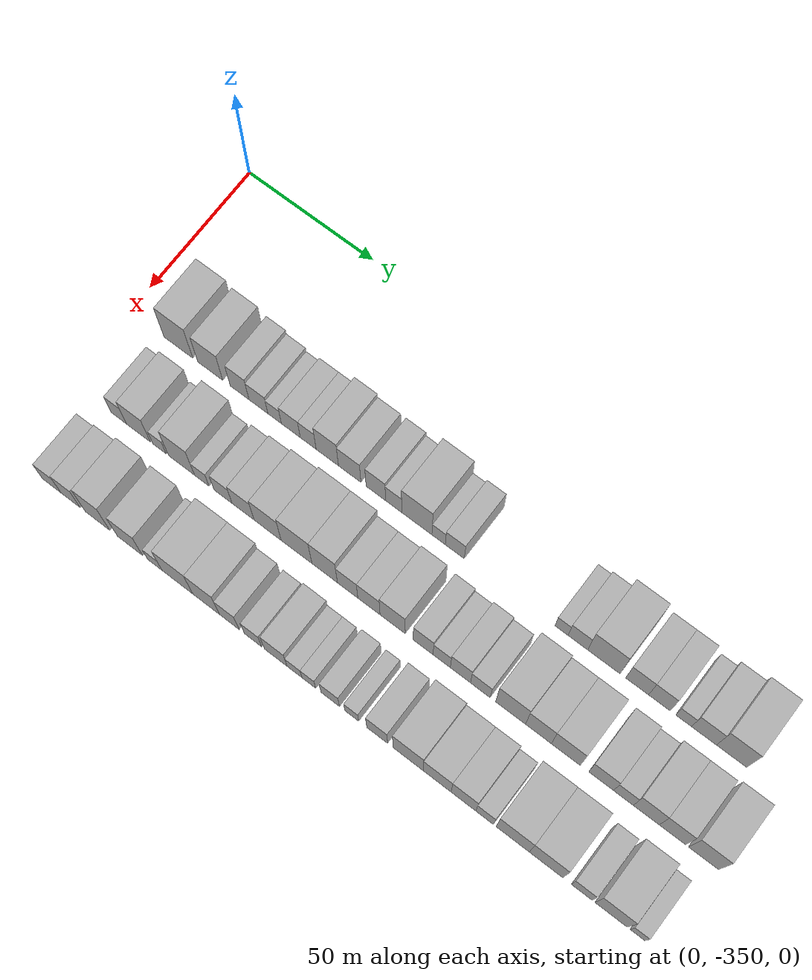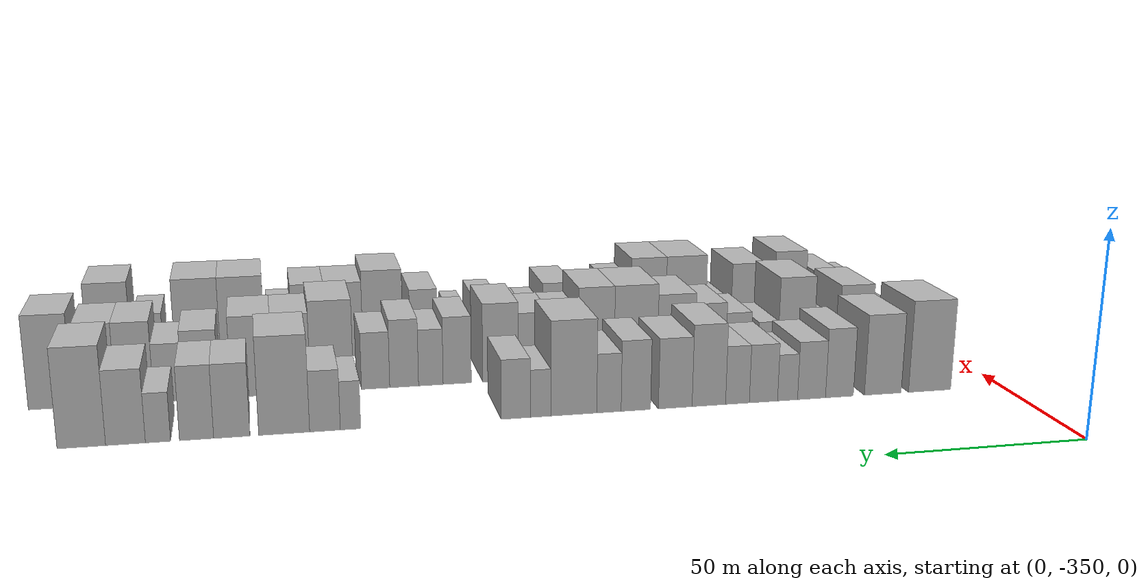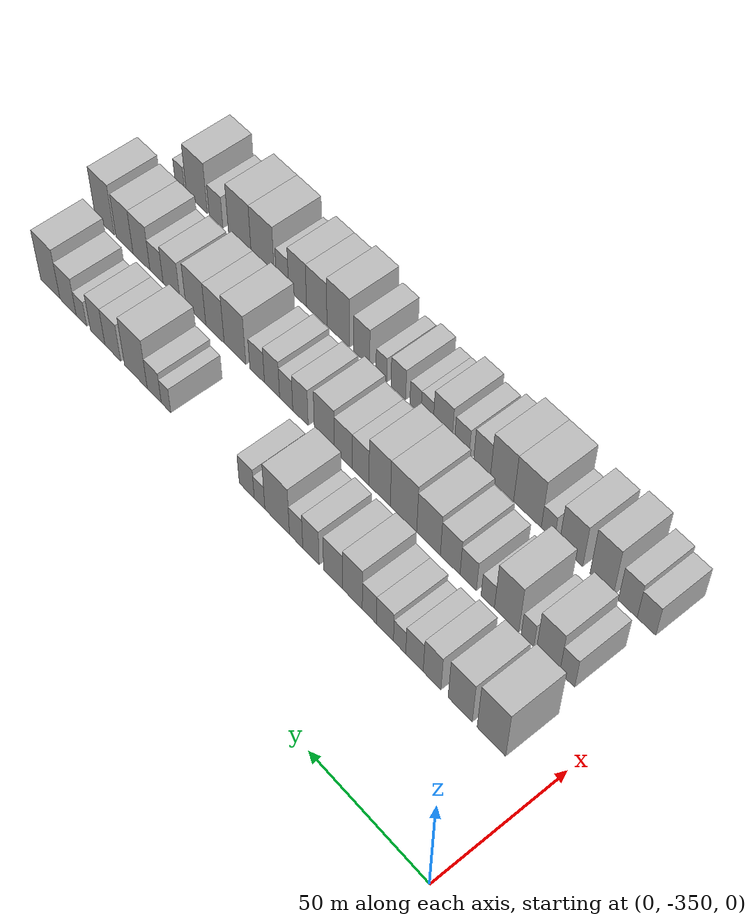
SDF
<sdf version="1.6">
 <world name="default">
  <model name="building_1">
   <static>1</static>
   <pose>50.0000 -330.2186 0 0.000000 0.000000 0.000000</pose>
   <link name="link">
    <pose>0 0 12.00 0 0 0</pose>
    <collision name="collision"><geometry><box><size>20.0000 11.5628 24.0000</size></box></geometry></collision>
    <visual name="visual">
     <cast_shadows>0</cast_shadows>
     <geometry><box><size>20.0000 11.5628 24.0000</size></box></geometry>
     <material>
      <script>
       <uri>model://HANNAS_wall/materials/scripts</uri>
       <uri>model://HANNAS_wall/materials/textures</uri>
       <name>vrc/HANNAS_wall</name>
      </script>
     </material>
    </visual>
   </link>
  </model>
  <model name="building_2">
   <static>1</static>
   <pose>50.0000 -317.4556 0 0.000000 0.000000 0.000000</pose>
   <link name="link">
    <pose>0 0 10.50 0 0 0</pose>
    <collision name="collision"><geometry><box><size>20.0000 9.9631 21.0000</size></box></geometry></collision>
    <visual name="visual">
     <cast_shadows>0</cast_shadows>
     <geometry><box><size>20.0000 9.9631 21.0000</size></box></geometry>
     <material>
      <script>
       <uri>model://HANNAS_wall/materials/scripts</uri>
       <uri>model://HANNAS_wall/materials/textures</uri>
       <name>vrc/HANNAS_wall</name>
      </script>
     </material>
    </visual>
   </link>
  </model>
  <model name="building_3">
   <static>1</static>
   <pose>50.0000 -305.7439 0 0.000000 0.000000 0.000000</pose>
   <link name="link">
    <pose>0 0 9.00 0 0 0</pose>
    <collision name="collision"><geometry><box><size>20.0000 7.4604 18.0000</size></box></geometry></collision>
    <visual name="visual">
     <cast_shadows>0</cast_shadows>
     <geometry><box><size>20.0000 7.4604 18.0000</size></box></geometry>
     <material>
      <script>
       <uri>model://HANNAS_wall/materials/scripts</uri>
       <uri>model://HANNAS_wall/materials/textures</uri>
       <name>vrc/HANNAS_wall</name>
      </script>
     </material>
    </visual>
   </link>
  </model>
  <model name="building_4">
   <static>1</static>
   <pose>50.0000 -298.2935 0 0.000000 0.000000 0.000000</pose>
   <link name="link">
    <pose>0 0 7.50 0 0 0</pose>
    <collision name="collision"><geometry><box><size>20.0000 7.4404 15.0000</size></box></geometry></collision>
    <visual name="visual">
     <cast_shadows>0</cast_shadows>
     <geometry><box><size>20.0000 7.4404 15.0000</size></box></geometry>
     <material>
      <script>
       <uri>model://HANNAS_wall/materials/scripts</uri>
       <uri>model://HANNAS_wall/materials/textures</uri>
       <name>vrc/HANNAS_wall</name>
      </script>
     </material>
    </visual>
   </link>
  </model>
  <model name="building_5">
   <static>1</static>
   <pose>50.0000 -291.9311 0 0.000000 0.000000 0.000000</pose>
   <link name="link">
    <pose>0 0 6.00 0 0 0</pose>
    <collision name="collision"><geometry><box><size>20.0000 5.2844 12.0000</size></box></geometry></collision>
    <visual name="visual">
     <cast_shadows>0</cast_shadows>
     <geometry><box><size>20.0000 5.2844 12.0000</size></box></geometry>
     <material>
      <script>
       <uri>model://HANNAS_wall/materials/scripts</uri>
       <uri>model://HANNAS_wall/materials/textures</uri>
       <name>vrc/HANNAS_wall</name>
      </script>
     </material>
    </visual>
   </link>
  </model>
  <model name="building_6">
   <static>1</static>
   <pose>50.0000 -285.5822 0 0.000000 0.000000 0.000000</pose>
   <link name="link">
    <pose>0 0 7.50 0 0 0</pose>
    <collision name="collision"><geometry><box><size>20.0000 7.4134 15.0000</size></box></geometry></collision>
    <visual name="visual">
     <cast_shadows>0</cast_shadows>
     <geometry><box><size>20.0000 7.4134 15.0000</size></box></geometry>
     <material>
      <script>
       <uri>model://HANNAS_wall/materials/scripts</uri>
       <uri>model://HANNAS_wall/materials/textures</uri>
       <name>vrc/HANNAS_wall</name>
      </script>
     </material>
    </visual>
   </link>
  </model>
  <model name="building_7">
   <static>1</static>
   <pose>50.0000 -278.7771 0 0.000000 0.000000 0.000000</pose>
   <link name="link">
    <pose>0 0 7.50 0 0 0</pose>
    <collision name="collision"><geometry><box><size>20.0000 6.1969 15.0000</size></box></geometry></collision>
    <visual name="visual">
     <cast_shadows>0</cast_shadows>
     <geometry><box><size>20.0000 6.1969 15.0000</size></box></geometry>
     <material>
      <script>
       <uri>model://HANNAS_wall/materials/scripts</uri>
       <uri>model://HANNAS_wall/materials/textures</uri>
       <name>vrc/HANNAS_wall</name>
      </script>
     </material>
    </visual>
   </link>
  </model>
  <model name="building_8">
   <static>1</static>
   <pose>50.0000 -271.3484 0 0.000000 0.000000 0.000000</pose>
   <link name="link">
    <pose>0 0 10.50 0 0 0</pose>
    <collision name="collision"><geometry><box><size>20.0000 8.6604 21.0000</size></box></geometry></collision>
    <visual name="visual">
     <cast_shadows>0</cast_shadows>
     <geometry><box><size>20.0000 8.6604 21.0000</size></box></geometry>
     <material>
      <script>
       <uri>model://HANNAS_wall/materials/scripts</uri>
       <uri>model://HANNAS_wall/materials/textures</uri>
       <name>vrc/HANNAS_wall</name>
      </script>
     </material>
    </visual>
   </link>
  </model>
  <model name="building_9">
   <static>1</static>
   <pose>50.0000 -262.6990 0 0.000000 0.000000 0.000000</pose>
   <link name="link">
    <pose>0 0 9.00 0 0 0</pose>
    <collision name="collision"><geometry><box><size>20.0000 8.6385 18.0000</size></box></geometry></collision>
    <visual name="visual">
     <cast_shadows>0</cast_shadows>
     <geometry><box><size>20.0000 8.6385 18.0000</size></box></geometry>
     <material>
      <script>
       <uri>model://HANNAS_wall/materials/scripts</uri>
       <uri>model://HANNAS_wall/materials/textures</uri>
       <name>vrc/HANNAS_wall</name>
      </script>
     </material>
    </visual>
   </link>
  </model>
  <model name="building_10">
   <static>1</static>
   <pose>50.0000 -252.6396 0 0.000000 0.000000 0.000000</pose>
   <link name="link">
    <pose>0 0 9.00 0 0 0</pose>
    <collision name="collision"><geometry><box><size>20.0000 7.4803 18.0000</size></box></geometry></collision>
    <visual name="visual">
     <cast_shadows>0</cast_shadows>
     <geometry><box><size>20.0000 7.4803 18.0000</size></box></geometry>
     <material>
      <script>
       <uri>model://HANNAS_wall/materials/scripts</uri>
       <uri>model://HANNAS_wall/materials/textures</uri>
       <name>vrc/HANNAS_wall</name>
      </script>
     </material>
    </visual>
   </link>
  </model>
  <model name="building_11">
   <static>1</static>
   <pose>50.0000 -245.8336 0 0.000000 0.000000 0.000000</pose>
   <link name="link">
    <pose>0 0 7.50 0 0 0</pose>
    <collision name="collision"><geometry><box><size>20.0000 6.1317 15.0000</size></box></geometry></collision>
    <visual name="visual">
     <cast_shadows>0</cast_shadows>
     <geometry><box><size>20.0000 6.1317 15.0000</size></box></geometry>
     <material>
      <script>
       <uri>model://HANNAS_wall/materials/scripts</uri>
       <uri>model://HANNAS_wall/materials/textures</uri>
       <name>vrc/HANNAS_wall</name>
      </script>
     </material>
    </visual>
   </link>
  </model>
  <model name="building_12">
   <static>1</static>
   <pose>50.0000 -237.0163 0 0.000000 0.000000 0.000000</pose>
   <link name="link">
    <pose>0 0 12.00 0 0 0</pose>
    <collision name="collision"><geometry><box><size>20.0000 11.5029 24.0000</size></box></geometry></collision>
    <visual name="visual">
     <cast_shadows>0</cast_shadows>
     <geometry><box><size>20.0000 11.5029 24.0000</size></box></geometry>
     <material>
      <script>
       <uri>model://HANNAS_wall/materials/scripts</uri>
       <uri>model://HANNAS_wall/materials/textures</uri>
       <name>vrc/HANNAS_wall</name>
      </script>
     </material>
    </visual>
   </link>
  </model>
  <model name="building_13">
   <static>1</static>
   <pose>50.0000 -228.7316 0 0.000000 0.000000 0.000000</pose>
   <link name="link">
    <pose>0 0 6.00 0 0 0</pose>
    <collision name="collision"><geometry><box><size>20.0000 5.0666 12.0000</size></box></geometry></collision>
    <visual name="visual">
     <cast_shadows>0</cast_shadows>
     <geometry><box><size>20.0000 5.0666 12.0000</size></box></geometry>
     <material>
      <script>
       <uri>model://HANNAS_wall/materials/scripts</uri>
       <uri>model://HANNAS_wall/materials/textures</uri>
       <name>vrc/HANNAS_wall</name>
      </script>
     </material>
    </visual>
   </link>
  </model>
  <model name="building_14">
   <static>1</static>
   <pose>50.0000 -222.6365 0 0.000000 0.000000 0.000000</pose>
   <link name="link">
    <pose>0 0 7.50 0 0 0</pose>
    <collision name="collision"><geometry><box><size>20.0000 7.1236 15.0000</size></box></geometry></collision>
    <visual name="visual">
     <cast_shadows>0</cast_shadows>
     <geometry><box><size>20.0000 7.1236 15.0000</size></box></geometry>
     <material>
      <script>
       <uri>model://HANNAS_wall/materials/scripts</uri>
       <uri>model://HANNAS_wall/materials/textures</uri>
       <name>vrc/HANNAS_wall</name>
      </script>
     </material>
    </visual>
   </link>
  </model>
  <model name="building_15">
   <static>1</static>
   <pose>50.0000 -182.8675 0 0.000000 0.000000 0.000000</pose>
   <link name="link">
    <pose>0 0 6.00 0 0 0</pose>
    <collision name="collision"><geometry><box><size>20.0000 4.8048 12.0000</size></box></geometry></collision>
    <visual name="visual">
     <cast_shadows>0</cast_shadows>
     <geometry><box><size>20.0000 4.8048 12.0000</size></box></geometry>
     <material>
      <script>
       <uri>model://HANNAS_wall/materials/scripts</uri>
       <uri>model://HANNAS_wall/materials/textures</uri>
       <name>vrc/HANNAS_wall</name>
      </script>
     </material>
    </visual>
   </link>
  </model>
  <model name="building_16">
   <static>1</static>
   <pose>50.0000 -176.8757 0 0.000000 0.000000 0.000000</pose>
   <link name="link">
    <pose>0 0 7.50 0 0 0</pose>
    <collision name="collision"><geometry><box><size>20.0000 7.1787 15.0000</size></box></geometry></collision>
    <visual name="visual">
     <cast_shadows>0</cast_shadows>
     <geometry><box><size>20.0000 7.1787 15.0000</size></box></geometry>
     <material>
      <script>
       <uri>model://HANNAS_wall/materials/scripts</uri>
       <uri>model://HANNAS_wall/materials/textures</uri>
       <name>vrc/HANNAS_wall</name>
      </script>
     </material>
    </visual>
   </link>
  </model>
  <model name="building_17">
   <static>1</static>
   <pose>50.0000 -167.3817 0 0.000000 0.000000 0.000000</pose>
   <link name="link">
    <pose>0 0 12.00 0 0 0</pose>
    <collision name="collision"><geometry><box><size>20.0000 11.8093 24.0000</size></box></geometry></collision>
    <visual name="visual">
     <cast_shadows>0</cast_shadows>
     <geometry><box><size>20.0000 11.8093 24.0000</size></box></geometry>
     <material>
      <script>
       <uri>model://HANNAS_wall/materials/scripts</uri>
       <uri>model://HANNAS_wall/materials/textures</uri>
       <name>vrc/HANNAS_wall</name>
      </script>
     </material>
    </visual>
   </link>
  </model>
  <model name="building_18">
   <static>1</static>
   <pose>50.0000 -155.3240 0 0.000000 0.000000 0.000000</pose>
   <link name="link">
    <pose>0 0 9.00 0 0 0</pose>
    <collision name="collision"><geometry><box><size>20.0000 8.3063 18.0000</size></box></geometry></collision>
    <visual name="visual">
     <cast_shadows>0</cast_shadows>
     <geometry><box><size>20.0000 8.3063 18.0000</size></box></geometry>
     <material>
      <script>
       <uri>model://HANNAS_wall/materials/scripts</uri>
       <uri>model://HANNAS_wall/materials/textures</uri>
       <name>vrc/HANNAS_wall</name>
      </script>
     </material>
    </visual>
   </link>
  </model>
  <model name="building_19">
   <static>1</static>
   <pose>50.0000 -147.2975 0 0.000000 0.000000 0.000000</pose>
   <link name="link">
    <pose>0 0 9.00 0 0 0</pose>
    <collision name="collision"><geometry><box><size>20.0000 7.7467 18.0000</size></box></geometry></collision>
    <visual name="visual">
     <cast_shadows>0</cast_shadows>
     <geometry><box><size>20.0000 7.7467 18.0000</size></box></geometry>
     <material>
      <script>
       <uri>model://HANNAS_wall/materials/scripts</uri>
       <uri>model://HANNAS_wall/materials/textures</uri>
       <name>vrc/HANNAS_wall</name>
      </script>
     </material>
    </visual>
   </link>
  </model>
  <model name="building_20">
   <static>1</static>
   <pose>50.0000 -138.5946 0 0.000000 0.000000 0.000000</pose>
   <link name="link">
    <pose>0 0 6.00 0 0 0</pose>
    <collision name="collision"><geometry><box><size>20.0000 5.6591 12.0000</size></box></geometry></collision>
    <visual name="visual">
     <cast_shadows>0</cast_shadows>
     <geometry><box><size>20.0000 5.6591 12.0000</size></box></geometry>
     <material>
      <script>
       <uri>model://HANNAS_wall/materials/scripts</uri>
       <uri>model://HANNAS_wall/materials/textures</uri>
       <name>vrc/HANNAS_wall</name>
      </script>
     </material>
    </visual>
   </link>
  </model>
  <model name="building_21">
   <static>1</static>
   <pose>50.0000 -131.3312 0 0.000000 0.000000 0.000000</pose>
   <link name="link">
    <pose>0 0 9.00 0 0 0</pose>
    <collision name="collision"><geometry><box><size>20.0000 8.8676 18.0000</size></box></geometry></collision>
    <visual name="visual">
     <cast_shadows>0</cast_shadows>
     <geometry><box><size>20.0000 8.8676 18.0000</size></box></geometry>
     <material>
      <script>
       <uri>model://HANNAS_wall/materials/scripts</uri>
       <uri>model://HANNAS_wall/materials/textures</uri>
       <name>vrc/HANNAS_wall</name>
      </script>
     </material>
    </visual>
   </link>
  </model>
  <model name="building_22">
   <static>1</static>
   <pose>50.0000 -121.5439 0 0.000000 0.000000 0.000000</pose>
   <link name="link">
    <pose>0 0 12.00 0 0 0</pose>
    <collision name="collision"><geometry><box><size>20.0000 10.7071 24.0000</size></box></geometry></collision>
    <visual name="visual">
     <cast_shadows>0</cast_shadows>
     <geometry><box><size>20.0000 10.7071 24.0000</size></box></geometry>
     <material>
      <script>
       <uri>model://HANNAS_wall/materials/scripts</uri>
       <uri>model://HANNAS_wall/materials/textures</uri>
       <name>vrc/HANNAS_wall</name>
      </script>
     </material>
    </visual>
   </link>
  </model>
  <model name="building_71">
   <static>1</static>
   <pose>79.0000 -329.9695 0 0.000000 0.000000 0.000000</pose>
   <link name="link">
    <pose>0 0 7.50 0 0 0</pose>
    <collision name="collision"><geometry><box><size>20.0000 6.0610 15.0000</size></box></geometry></collision>
    <visual name="visual">
     <cast_shadows>0</cast_shadows>
     <geometry><box><size>20.0000 6.0610 15.0000</size></box></geometry>
     <material>
      <script>
       <uri>model://HANNAS_wall/materials/scripts</uri>
       <uri>model://HANNAS_wall/materials/textures</uri>
       <name>vrc/HANNAS_wall</name>
      </script>
     </material>
    </visual>
   </link>
  </model>
  <model name="building_72">
   <static>1</static>
   <pose>79.0000 -322.1754 0 0.000000 0.000000 0.000000</pose>
   <link name="link">
    <pose>0 0 10.50 0 0 0</pose>
    <collision name="collision"><geometry><box><size>20.0000 9.5271 21.0000</size></box></geometry></collision>
    <visual name="visual">
     <cast_shadows>0</cast_shadows>
     <geometry><box><size>20.0000 9.5271 21.0000</size></box></geometry>
     <material>
      <script>
       <uri>model://HANNAS_wall/materials/scripts</uri>
       <uri>model://HANNAS_wall/materials/textures</uri>
       <name>vrc/HANNAS_wall</name>
      </script>
     </material>
    </visual>
   </link>
  </model>
  <model name="building_73">
   <static>1</static>
   <pose>79.0000 -313.7748 0 0.000000 0.000000 0.000000</pose>
   <link name="link">
    <pose>0 0 6.00 0 0 0</pose>
    <collision name="collision"><geometry><box><size>20.0000 5.2740 12.0000</size></box></geometry></collision>
    <visual name="visual">
     <cast_shadows>0</cast_shadows>
     <geometry><box><size>20.0000 5.2740 12.0000</size></box></geometry>
     <material>
      <script>
       <uri>model://HANNAS_wall/materials/scripts</uri>
       <uri>model://HANNAS_wall/materials/textures</uri>
       <name>vrc/HANNAS_wall</name>
      </script>
     </material>
    </visual>
   </link>
  </model>
  <model name="building_74">
   <static>1</static>
   <pose>79.0000 -305.0358 0 0.000000 0.000000 0.000000</pose>
   <link name="link">
    <pose>0 0 12.00 0 0 0</pose>
    <collision name="collision"><geometry><box><size>20.0000 10.2040 24.0000</size></box></geometry></collision>
    <visual name="visual">
     <cast_shadows>0</cast_shadows>
     <geometry><box><size>20.0000 10.2040 24.0000</size></box></geometry>
     <material>
      <script>
       <uri>model://HANNAS_wall/materials/scripts</uri>
       <uri>model://HANNAS_wall/materials/textures</uri>
       <name>vrc/HANNAS_wall</name>
      </script>
     </material>
    </visual>
   </link>
  </model>
  <model name="building_75">
   <static>1</static>
   <pose>79.0000 -297.1159 0 0.000000 0.000000 0.000000</pose>
   <link name="link">
    <pose>0 0 6.00 0 0 0</pose>
    <collision name="collision"><geometry><box><size>20.0000 5.6359 12.0000</size></box></geometry></collision>
    <visual name="visual">
     <cast_shadows>0</cast_shadows>
     <geometry><box><size>20.0000 5.6359 12.0000</size></box></geometry>
     <material>
      <script>
       <uri>model://HANNAS_wall/materials/scripts</uri>
       <uri>model://HANNAS_wall/materials/textures</uri>
       <name>vrc/HANNAS_wall</name>
      </script>
     </material>
    </visual>
   </link>
  </model>
  <model name="building_76">
   <static>1</static>
   <pose>79.0000 -288.7767 0 0.000000 0.000000 0.000000</pose>
   <link name="link">
    <pose>0 0 7.50 0 0 0</pose>
    <collision name="collision"><geometry><box><size>20.0000 7.0424 15.0000</size></box></geometry></collision>
    <visual name="visual">
     <cast_shadows>0</cast_shadows>
     <geometry><box><size>20.0000 7.0424 15.0000</size></box></geometry>
     <material>
      <script>
       <uri>model://HANNAS_wall/materials/scripts</uri>
       <uri>model://HANNAS_wall/materials/textures</uri>
       <name>vrc/HANNAS_wall</name>
      </script>
     </material>
    </visual>
   </link>
  </model>
  <model name="building_77">
   <static>1</static>
   <pose>79.0000 -280.9839 0 0.000000 0.000000 0.000000</pose>
   <link name="link">
    <pose>0 0 9.00 0 0 0</pose>
    <collision name="collision"><geometry><box><size>20.0000 8.5432 18.0000</size></box></geometry></collision>
    <visual name="visual">
     <cast_shadows>0</cast_shadows>
     <geometry><box><size>20.0000 8.5432 18.0000</size></box></geometry>
     <material>
      <script>
       <uri>model://HANNAS_wall/materials/scripts</uri>
       <uri>model://HANNAS_wall/materials/textures</uri>
       <name>vrc/HANNAS_wall</name>
      </script>
     </material>
    </visual>
   </link>
  </model>
  <model name="building_78">
   <static>1</static>
   <pose>79.0000 -271.4863 0 0.000000 0.000000 0.000000</pose>
   <link name="link">
    <pose>0 0 10.50 0 0 0</pose>
    <collision name="collision"><geometry><box><size>20.0000 10.4520 21.0000</size></box></geometry></collision>
    <visual name="visual">
     <cast_shadows>0</cast_shadows>
     <geometry><box><size>20.0000 10.4520 21.0000</size></box></geometry>
     <material>
      <script>
       <uri>model://HANNAS_wall/materials/scripts</uri>
       <uri>model://HANNAS_wall/materials/textures</uri>
       <name>vrc/HANNAS_wall</name>
      </script>
     </material>
    </visual>
   </link>
  </model>
  <model name="building_79">
   <static>1</static>
   <pose>79.0000 -260.3414 0 0.000000 0.000000 0.000000</pose>
   <link name="link">
    <pose>0 0 12.00 0 0 0</pose>
    <collision name="collision"><geometry><box><size>20.0000 11.8379 24.0000</size></box></geometry></collision>
    <visual name="visual">
     <cast_shadows>0</cast_shadows>
     <geometry><box><size>20.0000 11.8379 24.0000</size></box></geometry>
     <material>
      <script>
       <uri>model://HANNAS_wall/materials/scripts</uri>
       <uri>model://HANNAS_wall/materials/textures</uri>
       <name>vrc/HANNAS_wall</name>
      </script>
     </material>
    </visual>
   </link>
  </model>
  <model name="building_80">
   <static>1</static>
   <pose>79.0000 -249.5621 0 0.000000 0.000000 0.000000</pose>
   <link name="link">
    <pose>0 0 12.00 0 0 0</pose>
    <collision name="collision"><geometry><box><size>20.0000 9.7208 24.0000</size></box></geometry></collision>
    <visual name="visual">
     <cast_shadows>0</cast_shadows>
     <geometry><box><size>20.0000 9.7208 24.0000</size></box></geometry>
     <material>
      <script>
       <uri>model://HANNAS_wall/materials/scripts</uri>
       <uri>model://HANNAS_wall/materials/textures</uri>
       <name>vrc/HANNAS_wall</name>
      </script>
     </material>
    </visual>
   </link>
  </model>
  <model name="building_81">
   <static>1</static>
   <pose>79.0000 -240.8583 0 0.000000 0.000000 0.000000</pose>
   <link name="link">
    <pose>0 0 9.00 0 0 0</pose>
    <collision name="collision"><geometry><box><size>20.0000 7.6867 18.0000</size></box></geometry></collision>
    <visual name="visual">
     <cast_shadows>0</cast_shadows>
     <geometry><box><size>20.0000 7.6867 18.0000</size></box></geometry>
     <material>
      <script>
       <uri>model://HANNAS_wall/materials/scripts</uri>
       <uri>model://HANNAS_wall/materials/textures</uri>
       <name>vrc/HANNAS_wall</name>
      </script>
     </material>
    </visual>
   </link>
  </model>
  <model name="building_82">
   <static>1</static>
   <pose>79.0000 -232.8319 0 0.000000 0.000000 0.000000</pose>
   <link name="link">
    <pose>0 0 9.00 0 0 0</pose>
    <collision name="collision"><geometry><box><size>20.0000 8.3662 18.0000</size></box></geometry></collision>
    <visual name="visual">
     <cast_shadows>0</cast_shadows>
     <geometry><box><size>20.0000 8.3662 18.0000</size></box></geometry>
     <material>
      <script>
       <uri>model://HANNAS_wall/materials/scripts</uri>
       <uri>model://HANNAS_wall/materials/textures</uri>
       <name>vrc/HANNAS_wall</name>
      </script>
     </material>
    </visual>
   </link>
  </model>
  <model name="building_83">
   <static>1</static>
   <pose>79.0000 -223.9256 0 0.000000 0.000000 0.000000</pose>
   <link name="link">
    <pose>0 0 10.50 0 0 0</pose>
    <collision name="collision"><geometry><box><size>20.0000 9.4464 21.0000</size></box></geometry></collision>
    <visual name="visual">
     <cast_shadows>0</cast_shadows>
     <geometry><box><size>20.0000 9.4464 21.0000</size></box></geometry>
     <material>
      <script>
       <uri>model://HANNAS_wall/materials/scripts</uri>
       <uri>model://HANNAS_wall/materials/textures</uri>
       <name>vrc/HANNAS_wall</name>
      </script>
     </material>
    </visual>
   </link>
  </model>
  <model name="building_84">
   <static>1</static>
   <pose>79.0000 -212.5070 0 0.000000 0.000000 0.000000</pose>
   <link name="link">
    <pose>0 0 9.00 0 0 0</pose>
    <collision name="collision"><geometry><box><size>20.0000 7.3908 18.0000</size></box></geometry></collision>
    <visual name="visual">
     <cast_shadows>0</cast_shadows>
     <geometry><box><size>20.0000 7.3908 18.0000</size></box></geometry>
     <material>
      <script>
       <uri>model://HANNAS_wall/materials/scripts</uri>
       <uri>model://HANNAS_wall/materials/textures</uri>
       <name>vrc/HANNAS_wall</name>
      </script>
     </material>
    </visual>
   </link>
  </model>
  <model name="building_85">
   <static>1</static>
   <pose>79.0000 -205.6117 0 0.000000 0.000000 0.000000</pose>
   <link name="link">
    <pose>0 0 7.50 0 0 0</pose>
    <collision name="collision"><geometry><box><size>20.0000 6.3998 15.0000</size></box></geometry></collision>
    <visual name="visual">
     <cast_shadows>0</cast_shadows>
     <geometry><box><size>20.0000 6.3998 15.0000</size></box></geometry>
     <material>
      <script>
       <uri>model://HANNAS_wall/materials/scripts</uri>
       <uri>model://HANNAS_wall/materials/textures</uri>
       <name>vrc/HANNAS_wall</name>
      </script>
     </material>
    </visual>
   </link>
  </model>
  <model name="building_86">
   <static>1</static>
   <pose>79.0000 -198.6911 0 0.000000 0.000000 0.000000</pose>
   <link name="link">
    <pose>0 0 9.00 0 0 0</pose>
    <collision name="collision"><geometry><box><size>20.0000 7.4414 18.0000</size></box></geometry></collision>
    <visual name="visual">
     <cast_shadows>0</cast_shadows>
     <geometry><box><size>20.0000 7.4414 18.0000</size></box></geometry>
     <material>
      <script>
       <uri>model://HANNAS_wall/materials/scripts</uri>
       <uri>model://HANNAS_wall/materials/textures</uri>
       <name>vrc/HANNAS_wall</name>
      </script>
     </material>
    </visual>
   </link>
  </model>
  <model name="building_87">
   <static>1</static>
   <pose>79.0000 -191.3484 0 0.000000 0.000000 0.000000</pose>
   <link name="link">
    <pose>0 0 7.50 0 0 0</pose>
    <collision name="collision"><geometry><box><size>20.0000 7.2439 15.0000</size></box></geometry></collision>
    <visual name="visual">
     <cast_shadows>0</cast_shadows>
     <geometry><box><size>20.0000 7.2439 15.0000</size></box></geometry>
     <material>
      <script>
       <uri>model://HANNAS_wall/materials/scripts</uri>
       <uri>model://HANNAS_wall/materials/textures</uri>
       <name>vrc/HANNAS_wall</name>
      </script>
     </material>
    </visual>
   </link>
  </model>
  <model name="building_88">
   <static>1</static>
   <pose>79.0000 -180.2639 0 0.000000 0.000000 0.000000</pose>
   <link name="link">
    <pose>0 0 12.00 0 0 0</pose>
    <collision name="collision"><geometry><box><size>20.0000 10.9250 24.0000</size></box></geometry></collision>
    <visual name="visual">
     <cast_shadows>0</cast_shadows>
     <geometry><box><size>20.0000 10.9250 24.0000</size></box></geometry>
     <material>
      <script>
       <uri>model://HANNAS_wall/materials/scripts</uri>
       <uri>model://HANNAS_wall/materials/textures</uri>
       <name>vrc/HANNAS_wall</name>
      </script>
     </material>
    </visual>
   </link>
  </model>
  <model name="building_89">
   <static>1</static>
   <pose>79.0000 -170.1079 0 0.000000 0.000000 0.000000</pose>
   <link name="link">
    <pose>0 0 10.50 0 0 0</pose>
    <collision name="collision"><geometry><box><size>20.0000 9.3870 21.0000</size></box></geometry></collision>
    <visual name="visual">
     <cast_shadows>0</cast_shadows>
     <geometry><box><size>20.0000 9.3870 21.0000</size></box></geometry>
     <material>
      <script>
       <uri>model://HANNAS_wall/materials/scripts</uri>
       <uri>model://HANNAS_wall/materials/textures</uri>
       <name>vrc/HANNAS_wall</name>
      </script>
     </material>
    </visual>
   </link>
  </model>
  <model name="building_90">
   <static>1</static>
   <pose>79.0000 -160.1839 0 0.000000 0.000000 0.000000</pose>
   <link name="link">
    <pose>0 0 10.50 0 0 0</pose>
    <collision name="collision"><geometry><box><size>20.0000 10.4610 21.0000</size></box></geometry></collision>
    <visual name="visual">
     <cast_shadows>0</cast_shadows>
     <geometry><box><size>20.0000 10.4610 21.0000</size></box></geometry>
     <material>
      <script>
       <uri>model://HANNAS_wall/materials/scripts</uri>
       <uri>model://HANNAS_wall/materials/textures</uri>
       <name>vrc/HANNAS_wall</name>
      </script>
     </material>
    </visual>
   </link>
  </model>
  <model name="building_91">
   <static>1</static>
   <pose>79.0000 -147.4932 0 0.000000 0.000000 0.000000</pose>
   <link name="link">
    <pose>0 0 9.00 0 0 0</pose>
    <collision name="collision"><geometry><box><size>20.0000 8.9204 18.0000</size></box></geometry></collision>
    <visual name="visual">
     <cast_shadows>0</cast_shadows>
     <geometry><box><size>20.0000 8.9204 18.0000</size></box></geometry>
     <material>
      <script>
       <uri>model://HANNAS_wall/materials/scripts</uri>
       <uri>model://HANNAS_wall/materials/textures</uri>
       <name>vrc/HANNAS_wall</name>
      </script>
     </material>
    </visual>
   </link>
  </model>
  <model name="building_92">
   <static>1</static>
   <pose>79.0000 -139.5305 0 0.000000 0.000000 0.000000</pose>
   <link name="link">
    <pose>0 0 7.50 0 0 0</pose>
    <collision name="collision"><geometry><box><size>20.0000 7.0050 15.0000</size></box></geometry></collision>
    <visual name="visual">
     <cast_shadows>0</cast_shadows>
     <geometry><box><size>20.0000 7.0050 15.0000</size></box></geometry>
     <material>
      <script>
       <uri>model://HANNAS_wall/materials/scripts</uri>
       <uri>model://HANNAS_wall/materials/textures</uri>
       <name>vrc/HANNAS_wall</name>
      </script>
     </material>
    </visual>
   </link>
  </model>
  <model name="building_93">
   <static>1</static>
   <pose>79.0000 -131.4531 0 0.000000 0.000000 0.000000</pose>
   <link name="link">
    <pose>0 0 10.50 0 0 0</pose>
    <collision name="collision"><geometry><box><size>20.0000 9.1498 21.0000</size></box></geometry></collision>
    <visual name="visual">
     <cast_shadows>0</cast_shadows>
     <geometry><box><size>20.0000 9.1498 21.0000</size></box></geometry>
     <material>
      <script>
       <uri>model://HANNAS_wall/materials/scripts</uri>
       <uri>model://HANNAS_wall/materials/textures</uri>
       <name>vrc/HANNAS_wall</name>
      </script>
     </material>
    </visual>
   </link>
  </model>
  <model name="building_94">
   <static>1</static>
   <pose>79.0000 -122.2229 0 0.000000 0.000000 0.000000</pose>
   <link name="link">
    <pose>0 0 10.50 0 0 0</pose>
    <collision name="collision"><geometry><box><size>20.0000 9.3106 21.0000</size></box></geometry></collision>
    <visual name="visual">
     <cast_shadows>0</cast_shadows>
     <geometry><box><size>20.0000 9.3106 21.0000</size></box></geometry>
     <material>
      <script>
       <uri>model://HANNAS_wall/materials/scripts</uri>
       <uri>model://HANNAS_wall/materials/textures</uri>
       <name>vrc/HANNAS_wall</name>
      </script>
     </material>
    </visual>
   </link>
  </model>
  <model name="building_95">
   <static>1</static>
   <pose>79.0000 -111.3020 0 0.000000 0.000000 0.000000</pose>
   <link name="link">
    <pose>0 0 12.00 0 0 0</pose>
    <collision name="collision"><geometry><box><size>20.0000 10.5313 24.0000</size></box></geometry></collision>
    <visual name="visual">
     <cast_shadows>0</cast_shadows>
     <geometry><box><size>20.0000 10.5313 24.0000</size></box></geometry>
     <material>
      <script>
       <uri>model://HANNAS_wall/materials/scripts</uri>
       <uri>model://HANNAS_wall/materials/textures</uri>
       <name>vrc/HANNAS_wall</name>
      </script>
     </material>
    </visual>
   </link>
  </model>
  <model name="building_140">
   <static>1</static>
   <pose>108.0000 -332.2698 0 0.000000 0.000000 0.000000</pose>
   <link name="link">
    <pose>0 0 7.50 0 0 0</pose>
    <collision name="collision"><geometry><box><size>20.0000 7.4604 15.0000</size></box></geometry></collision>
    <visual name="visual">
     <cast_shadows>0</cast_shadows>
     <geometry><box><size>20.0000 7.4604 15.0000</size></box></geometry>
     <material>
      <script>
       <uri>model://HANNAS_wall/materials/scripts</uri>
       <uri>model://HANNAS_wall/materials/textures</uri>
       <name>vrc/HANNAS_wall</name>
      </script>
     </material>
    </visual>
   </link>
  </model>
  <model name="building_141">
   <static>1</static>
   <pose>108.0000 -324.7196 0 0.000000 0.000000 0.000000</pose>
   <link name="link">
    <pose>0 0 9.00 0 0 0</pose>
    <collision name="collision"><geometry><box><size>20.0000 7.6400 18.0000</size></box></geometry></collision>
    <visual name="visual">
     <cast_shadows>0</cast_shadows>
     <geometry><box><size>20.0000 7.6400 18.0000</size></box></geometry>
     <material>
      <script>
       <uri>model://HANNAS_wall/materials/scripts</uri>
       <uri>model://HANNAS_wall/materials/textures</uri>
       <name>vrc/HANNAS_wall</name>
      </script>
     </material>
    </visual>
   </link>
  </model>
  <model name="building_142">
   <static>1</static>
   <pose>108.0000 -314.0918 0 0.000000 0.000000 0.000000</pose>
   <link name="link">
    <pose>0 0 12.00 0 0 0</pose>
    <collision name="collision"><geometry><box><size>20.0000 9.6156 24.0000</size></box></geometry></collision>
    <visual name="visual">
     <cast_shadows>0</cast_shadows>
     <geometry><box><size>20.0000 9.6156 24.0000</size></box></geometry>
     <material>
      <script>
       <uri>model://HANNAS_wall/materials/scripts</uri>
       <uri>model://HANNAS_wall/materials/textures</uri>
       <name>vrc/HANNAS_wall</name>
      </script>
     </material>
    </visual>
   </link>
  </model>
  <model name="building_143">
   <static>1</static>
   <pose>108.0000 -301.3443 0 0.000000 0.000000 0.000000</pose>
   <link name="link">
    <pose>0 0 10.50 0 0 0</pose>
    <collision name="collision"><geometry><box><size>20.0000 9.8793 21.0000</size></box></geometry></collision>
    <visual name="visual">
     <cast_shadows>0</cast_shadows>
     <geometry><box><size>20.0000 9.8793 21.0000</size></box></geometry>
     <material>
      <script>
       <uri>model://HANNAS_wall/materials/scripts</uri>
       <uri>model://HANNAS_wall/materials/textures</uri>
       <name>vrc/HANNAS_wall</name>
      </script>
     </material>
    </visual>
   </link>
  </model>
  <model name="building_144">
   <static>1</static>
   <pose>108.0000 -291.5964 0 0.000000 0.000000 0.000000</pose>
   <link name="link">
    <pose>0 0 6.00 0 0 0</pose>
    <collision name="collision"><geometry><box><size>20.0000 5.6166 12.0000</size></box></geometry></collision>
    <visual name="visual">
     <cast_shadows>0</cast_shadows>
     <geometry><box><size>20.0000 5.6166 12.0000</size></box></geometry>
     <material>
      <script>
       <uri>model://HANNAS_wall/materials/scripts</uri>
       <uri>model://HANNAS_wall/materials/textures</uri>
       <name>vrc/HANNAS_wall</name>
      </script>
     </material>
    </visual>
   </link>
  </model>
  <model name="building_145">
   <static>1</static>
   <pose>108.0000 -282.8244 0 0.000000 0.000000 0.000000</pose>
   <link name="link">
    <pose>0 0 12.00 0 0 0</pose>
    <collision name="collision"><geometry><box><size>20.0000 11.9274 24.0000</size></box></geometry></collision>
    <visual name="visual">
     <cast_shadows>0</cast_shadows>
     <geometry><box><size>20.0000 11.9274 24.0000</size></box></geometry>
     <material>
      <script>
       <uri>model://HANNAS_wall/materials/scripts</uri>
       <uri>model://HANNAS_wall/materials/textures</uri>
       <name>vrc/HANNAS_wall</name>
      </script>
     </material>
    </visual>
   </link>
  </model>
  <model name="building_146">
   <static>1</static>
   <pose>108.0000 -271.7116 0 0.000000 0.000000 0.000000</pose>
   <link name="link">
    <pose>0 0 12.00 0 0 0</pose>
    <collision name="collision"><geometry><box><size>20.0000 10.2982 24.0000</size></box></geometry></collision>
    <visual name="visual">
     <cast_shadows>0</cast_shadows>
     <geometry><box><size>20.0000 10.2982 24.0000</size></box></geometry>
     <material>
      <script>
       <uri>model://HANNAS_wall/materials/scripts</uri>
       <uri>model://HANNAS_wall/materials/textures</uri>
       <name>vrc/HANNAS_wall</name>
      </script>
     </material>
    </visual>
   </link>
  </model>
  <model name="building_147">
   <static>1</static>
   <pose>108.0000 -262.8327 0 0.000000 0.000000 0.000000</pose>
   <link name="link">
    <pose>0 0 9.00 0 0 0</pose>
    <collision name="collision"><geometry><box><size>20.0000 7.4596 18.0000</size></box></geometry></collision>
    <visual name="visual">
     <cast_shadows>0</cast_shadows>
     <geometry><box><size>20.0000 7.4596 18.0000</size></box></geometry>
     <material>
      <script>
       <uri>model://HANNAS_wall/materials/scripts</uri>
       <uri>model://HANNAS_wall/materials/textures</uri>
       <name>vrc/HANNAS_wall</name>
      </script>
     </material>
    </visual>
   </link>
  </model>
  <model name="building_148">
   <static>1</static>
   <pose>108.0000 -253.7924 0 0.000000 0.000000 0.000000</pose>
   <link name="link">
    <pose>0 0 7.50 0 0 0</pose>
    <collision name="collision"><geometry><box><size>20.0000 6.6209 15.0000</size></box></geometry></collision>
    <visual name="visual">
     <cast_shadows>0</cast_shadows>
     <geometry><box><size>20.0000 6.6209 15.0000</size></box></geometry>
     <material>
      <script>
       <uri>model://HANNAS_wall/materials/scripts</uri>
       <uri>model://HANNAS_wall/materials/textures</uri>
       <name>vrc/HANNAS_wall</name>
      </script>
     </material>
    </visual>
   </link>
  </model>
  <model name="building_149">
   <static>1</static>
   <pose>108.0000 -245.1979 0 0.000000 0.000000 0.000000</pose>
   <link name="link">
    <pose>0 0 9.00 0 0 0</pose>
    <collision name="collision"><geometry><box><size>20.0000 8.5680 18.0000</size></box></geometry></collision>
    <visual name="visual">
     <cast_shadows>0</cast_shadows>
     <geometry><box><size>20.0000 8.5680 18.0000</size></box></geometry>
     <material>
      <script>
       <uri>model://HANNAS_wall/materials/scripts</uri>
       <uri>model://HANNAS_wall/materials/textures</uri>
       <name>vrc/HANNAS_wall</name>
      </script>
     </material>
    </visual>
   </link>
  </model>
  <model name="building_150">
   <static>1</static>
   <pose>108.0000 -238.0958 0 0.000000 0.000000 0.000000</pose>
   <link name="link">
    <pose>0 0 6.00 0 0 0</pose>
    <collision name="collision"><geometry><box><size>20.0000 5.6362 12.0000</size></box></geometry></collision>
    <visual name="visual">
     <cast_shadows>0</cast_shadows>
     <geometry><box><size>20.0000 5.6362 12.0000</size></box></geometry>
     <material>
      <script>
       <uri>model://HANNAS_wall/materials/scripts</uri>
       <uri>model://HANNAS_wall/materials/textures</uri>
       <name>vrc/HANNAS_wall</name>
      </script>
     </material>
    </visual>
   </link>
  </model>
  <model name="building_151">
   <static>1</static>
   <pose>108.0000 -232.7119 0 0.000000 0.000000 0.000000</pose>
   <link name="link">
    <pose>0 0 6.00 0 0 0</pose>
    <collision name="collision"><geometry><box><size>20.0000 5.1315 12.0000</size></box></geometry></collision>
    <visual name="visual">
     <cast_shadows>0</cast_shadows>
     <geometry><box><size>20.0000 5.1315 12.0000</size></box></geometry>
     <material>
      <script>
       <uri>model://HANNAS_wall/materials/scripts</uri>
       <uri>model://HANNAS_wall/materials/textures</uri>
       <name>vrc/HANNAS_wall</name>
      </script>
     </material>
    </visual>
   </link>
  </model>
  <model name="building_152">
   <static>1</static>
   <pose>108.0000 -224.7063 0 0.000000 0.000000 0.000000</pose>
   <link name="link">
    <pose>0 0 7.50 0 0 0</pose>
    <collision name="collision"><geometry><box><size>20.0000 6.8797 15.0000</size></box></geometry></collision>
    <visual name="visual">
     <cast_shadows>0</cast_shadows>
     <geometry><box><size>20.0000 6.8797 15.0000</size></box></geometry>
     <material>
      <script>
       <uri>model://HANNAS_wall/materials/scripts</uri>
       <uri>model://HANNAS_wall/materials/textures</uri>
       <name>vrc/HANNAS_wall</name>
      </script>
     </material>
    </visual>
   </link>
  </model>
  <model name="building_153">
   <static>1</static>
   <pose>108.0000 -216.7093 0 0.000000 0.000000 0.000000</pose>
   <link name="link">
    <pose>0 0 6.00 0 0 0</pose>
    <collision name="collision"><geometry><box><size>20.0000 5.1143 12.0000</size></box></geometry></collision>
    <visual name="visual">
     <cast_shadows>0</cast_shadows>
     <geometry><box><size>20.0000 5.1143 12.0000</size></box></geometry>
     <material>
      <script>
       <uri>model://HANNAS_wall/materials/scripts</uri>
       <uri>model://HANNAS_wall/materials/textures</uri>
       <name>vrc/HANNAS_wall</name>
      </script>
     </material>
    </visual>
   </link>
  </model>
  <model name="building_154">
   <static>1</static>
   <pose>108.0000 -207.3169 0 0.000000 0.000000 0.000000</pose>
   <link name="link">
    <pose>0 0 9.00 0 0 0</pose>
    <collision name="collision"><geometry><box><size>20.0000 7.6705 18.0000</size></box></geometry></collision>
    <visual name="visual">
     <cast_shadows>0</cast_shadows>
     <geometry><box><size>20.0000 7.6705 18.0000</size></box></geometry>
     <material>
      <script>
       <uri>model://HANNAS_wall/materials/scripts</uri>
       <uri>model://HANNAS_wall/materials/textures</uri>
       <name>vrc/HANNAS_wall</name>
      </script>
     </material>
    </visual>
   </link>
  </model>
  <model name="building_155">
   <static>1</static>
   <pose>108.0000 -195.9602 0 0.000000 0.000000 0.000000</pose>
   <link name="link">
    <pose>0 0 12.00 0 0 0</pose>
    <collision name="collision"><geometry><box><size>20.0000 11.0428 24.0000</size></box></geometry></collision>
    <visual name="visual">
     <cast_shadows>0</cast_shadows>
     <geometry><box><size>20.0000 11.0428 24.0000</size></box></geometry>
     <material>
      <script>
       <uri>model://HANNAS_wall/materials/scripts</uri>
       <uri>model://HANNAS_wall/materials/textures</uri>
       <name>vrc/HANNAS_wall</name>
      </script>
     </material>
    </visual>
   </link>
  </model>
  <model name="building_156">
   <static>1</static>
   <pose>108.0000 -185.3490 0 0.000000 0.000000 0.000000</pose>
   <link name="link">
    <pose>0 0 10.50 0 0 0</pose>
    <collision name="collision"><geometry><box><size>20.0000 10.1796 21.0000</size></box></geometry></collision>
    <visual name="visual">
     <cast_shadows>0</cast_shadows>
     <geometry><box><size>20.0000 10.1796 21.0000</size></box></geometry>
     <material>
      <script>
       <uri>model://HANNAS_wall/materials/scripts</uri>
       <uri>model://HANNAS_wall/materials/textures</uri>
       <name>vrc/HANNAS_wall</name>
      </script>
     </material>
    </visual>
   </link>
  </model>
  <model name="building_157">
   <static>1</static>
   <pose>108.0000 -175.7654 0 0.000000 0.000000 0.000000</pose>
   <link name="link">
    <pose>0 0 10.50 0 0 0</pose>
    <collision name="collision"><geometry><box><size>20.0000 8.9877 21.0000</size></box></geometry></collision>
    <visual name="visual">
     <cast_shadows>0</cast_shadows>
     <geometry><box><size>20.0000 8.9877 21.0000</size></box></geometry>
     <material>
      <script>
       <uri>model://HANNAS_wall/materials/scripts</uri>
       <uri>model://HANNAS_wall/materials/textures</uri>
       <name>vrc/HANNAS_wall</name>
      </script>
     </material>
    </visual>
   </link>
  </model>
  <model name="building_158">
   <static>1</static>
   <pose>108.0000 -168.1059 0 0.000000 0.000000 0.000000</pose>
   <link name="link">
    <pose>0 0 7.50 0 0 0</pose>
    <collision name="collision"><geometry><box><size>20.0000 6.3313 15.0000</size></box></geometry></collision>
    <visual name="visual">
     <cast_shadows>0</cast_shadows>
     <geometry><box><size>20.0000 6.3313 15.0000</size></box></geometry>
     <material>
      <script>
       <uri>model://HANNAS_wall/materials/scripts</uri>
       <uri>model://HANNAS_wall/materials/textures</uri>
       <name>vrc/HANNAS_wall</name>
      </script>
     </material>
    </visual>
   </link>
  </model>
  <model name="building_159">
   <static>1</static>
   <pose>108.0000 -157.9925 0 0.000000 0.000000 0.000000</pose>
   <link name="link">
    <pose>0 0 12.00 0 0 0</pose>
    <collision name="collision"><geometry><box><size>20.0000 11.8955 24.0000</size></box></geometry></collision>
    <visual name="visual">
     <cast_shadows>0</cast_shadows>
     <geometry><box><size>20.0000 11.8955 24.0000</size></box></geometry>
     <material>
      <script>
       <uri>model://HANNAS_wall/materials/scripts</uri>
       <uri>model://HANNAS_wall/materials/textures</uri>
       <name>vrc/HANNAS_wall</name>
      </script>
     </material>
    </visual>
   </link>
  </model>
  <model name="building_160">
   <static>1</static>
   <pose>108.0000 -146.0919 0 0.000000 0.000000 0.000000</pose>
   <link name="link">
    <pose>0 0 12.00 0 0 0</pose>
    <collision name="collision"><geometry><box><size>20.0000 11.9056 24.0000</size></box></geometry></collision>
    <visual name="visual">
     <cast_shadows>0</cast_shadows>
     <geometry><box><size>20.0000 11.9056 24.0000</size></box></geometry>
     <material>
      <script>
       <uri>model://HANNAS_wall/materials/scripts</uri>
       <uri>model://HANNAS_wall/materials/textures</uri>
       <name>vrc/HANNAS_wall</name>
      </script>
     </material>
    </visual>
   </link>
  </model>
  <model name="building_161">
   <static>1</static>
   <pose>108.0000 -133.4832 0 0.000000 0.000000 0.000000</pose>
   <link name="link">
    <pose>0 0 7.50 0 0 0</pose>
    <collision name="collision"><geometry><box><size>20.0000 7.3117 15.0000</size></box></geometry></collision>
    <visual name="visual">
     <cast_shadows>0</cast_shadows>
     <geometry><box><size>20.0000 7.3117 15.0000</size></box></geometry>
     <material>
      <script>
       <uri>model://HANNAS_wall/materials/scripts</uri>
       <uri>model://HANNAS_wall/materials/textures</uri>
       <name>vrc/HANNAS_wall</name>
      </script>
     </material>
    </visual>
   </link>
  </model>
  <model name="building_162">
   <static>1</static>
   <pose>108.0000 -123.1823 0 0.000000 0.000000 0.000000</pose>
   <link name="link">
    <pose>0 0 12.00 0 0 0</pose>
    <collision name="collision"><geometry><box><size>20.0000 11.2902 24.0000</size></box></geometry></collision>
    <visual name="visual">
     <cast_shadows>0</cast_shadows>
     <geometry><box><size>20.0000 11.2902 24.0000</size></box></geometry>
     <material>
      <script>
       <uri>model://HANNAS_wall/materials/scripts</uri>
       <uri>model://HANNAS_wall/materials/textures</uri>
       <name>vrc/HANNAS_wall</name>
      </script>
     </material>
    </visual>
   </link>
  </model>
  <model name="building_163">
   <static>1</static>
   <pose>108.0000 -113.9683 0 0.000000 0.000000 0.000000</pose>
   <link name="link">
    <pose>0 0 6.00 0 0 0</pose>
    <collision name="collision"><geometry><box><size>20.0000 5.1379 12.0000</size></box></geometry></collision>
    <visual name="visual">
     <cast_shadows>0</cast_shadows>
     <geometry><box><size>20.0000 5.1379 12.0000</size></box></geometry>
     <material>
      <script>
       <uri>model://HANNAS_wall/materials/scripts</uri>
       <uri>model://HANNAS_wall/materials/textures</uri>
       <name>vrc/HANNAS_wall</name>
      </script>
     </material>
    </visual>
   </link>
  </model>
 </world>
</sdf>
